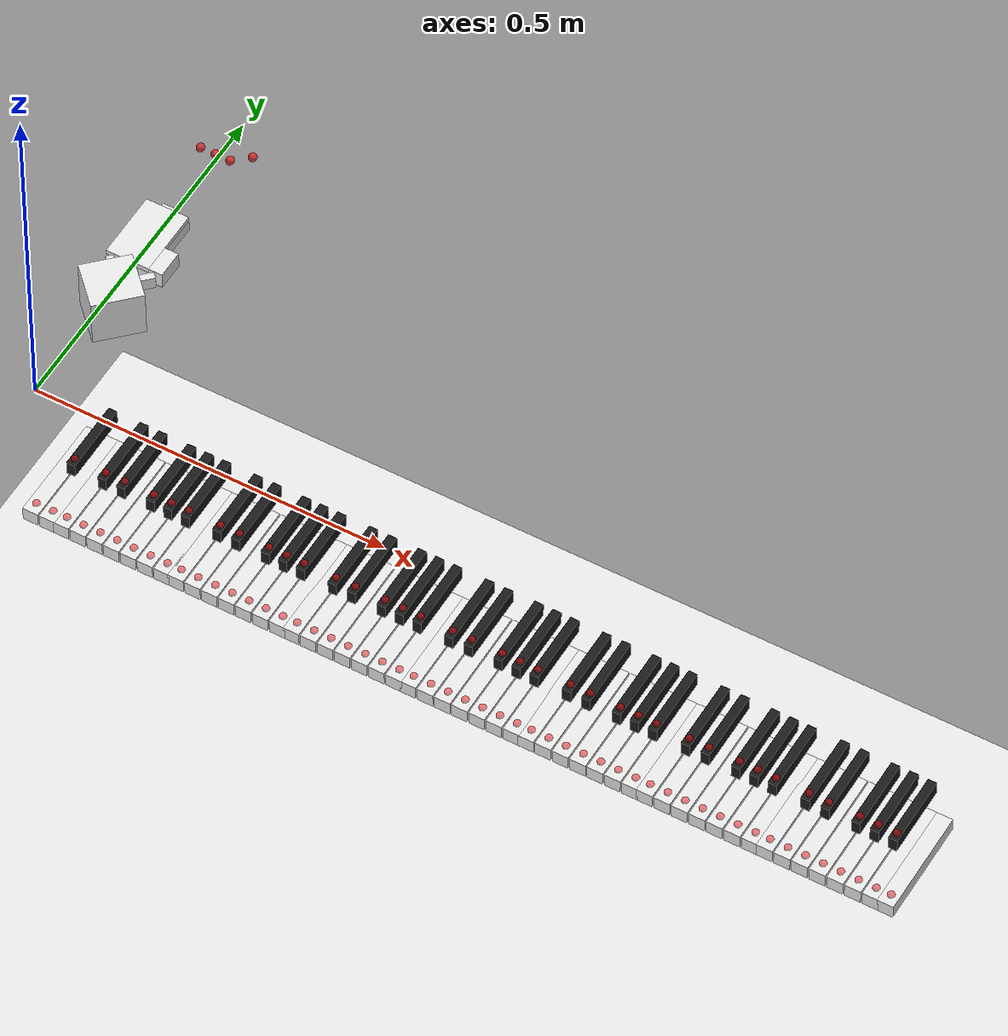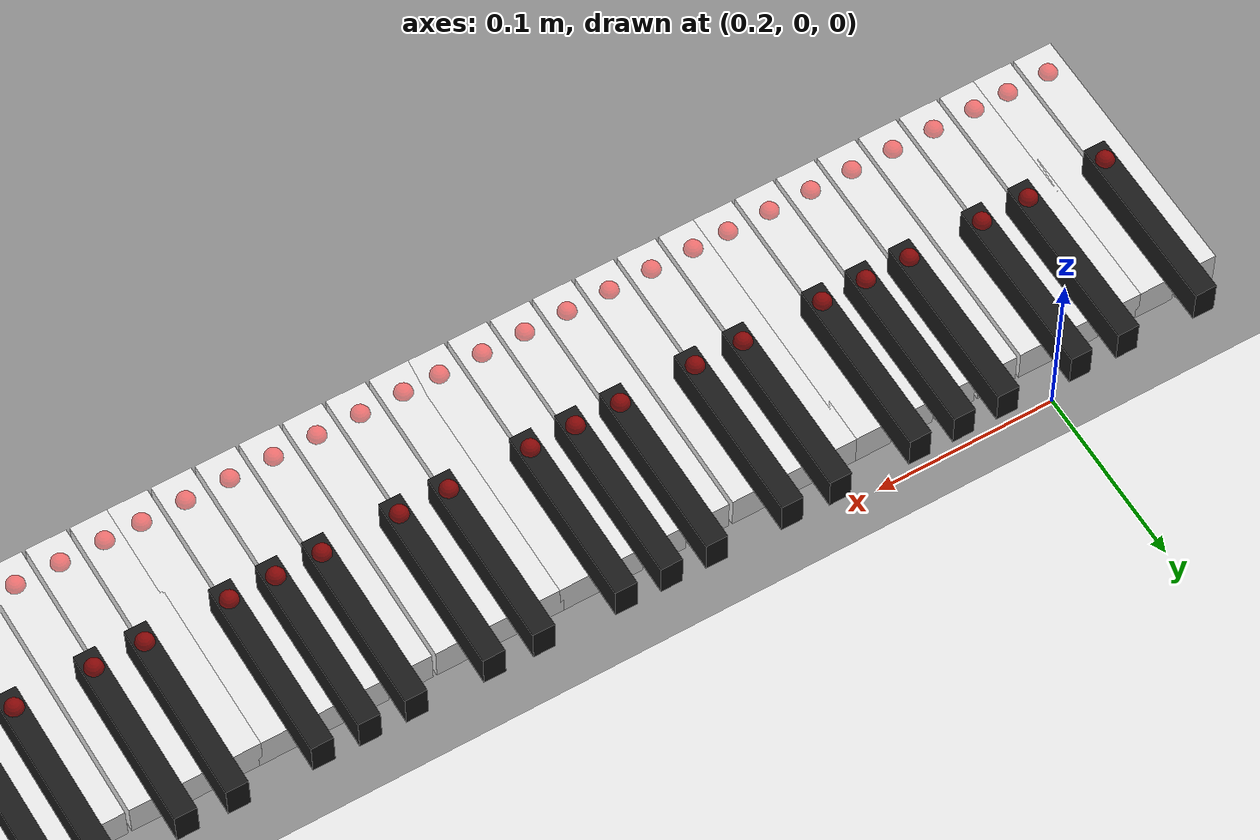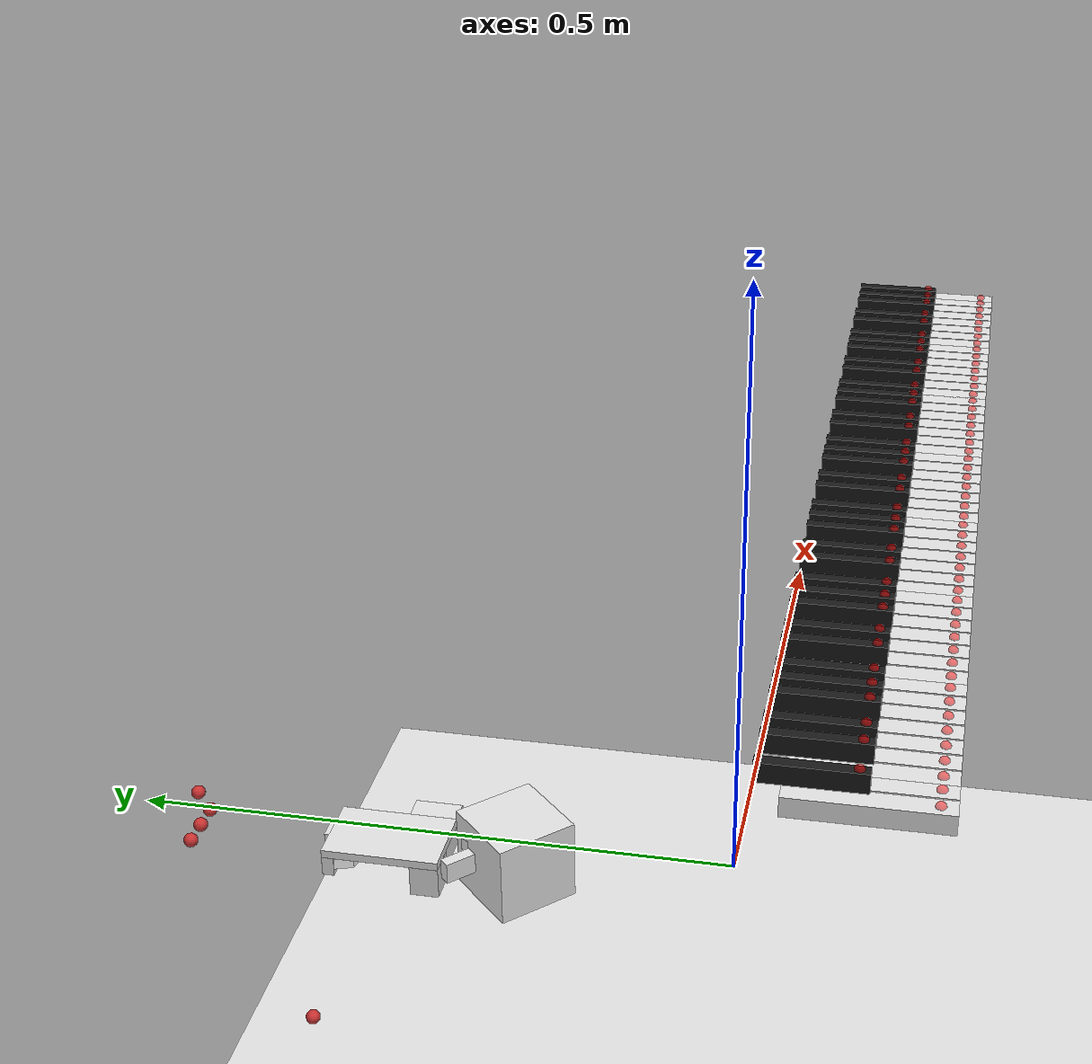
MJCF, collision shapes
<mujoco model="chord_shadow_hand">
  <compiler angle="radian" meshdir="../third_party/mujoco_menagerie/shadow_hand/assets" autolimits="true"/>
  <include file="piano.xml"/>

  <option timestep="0.001" integrator="implicitfast" iterations="50" gravity="0 0 -9.81" solver="Newton"/>

  <visual>
    <global offwidth="1920" offheight="1080"/>
    <headlight active="1" ambient="0.4 0.4 0.4" diffuse="0.5 0.5 0.5"/>
    <rgba haze="0.15 0.25 0.35 1"/>
    <quality shadowsize="4096"/>
  </visual>

  <default>
    <default class="gantry">
      <joint damping="100" armature="5.0" limited="true"/>
      <position kp="10000" forcerange="-10000 10000"/>
    </default>

    <default class="right_hand">
      <mesh scale="0.001 0.001 0.001"/>
      <joint axis="1 0 0" damping="0.05" armature="0.0002" frictionloss="0.01"/>
      <position forcerange="-5 5"/>

      <default class="wrist">
        <joint damping="0.5"/>
        <default class="wrist_y">
          <joint axis="0 1 0" range="-0.523599 0.174533"/>
          <position kp="10" ctrlrange="-0.523599 0.174533" forcerange="-20 20"/>
        </default>
        <default class="wrist_x">
          <joint range="-0.698132 0.488692"/>
          <position kp="8" ctrlrange="-0.698132 0.488692" forcerange="-20 20"/>
        </default>
      </default>

      <default class="thumb">
        <default class="thbase">
          <joint axis="0 0 -1" range="-1.0472 1.0472"/>
          <position kp="0.4" ctrlrange="-1.0472 1.0472" forcerange="-3 3"/>
        </default>
        <default class="thproximal">
          <joint range="0 1.22173"/>
          <position ctrlrange="0 1.22173" forcerange="-2 2"/>
        </default>
        <default class="thhub">
          <joint range="-0.20944 0.20944"/>
          <position kp="0.5" ctrlrange="-0.20944 0.20944"/>
        </default>
        <default class="thmiddle">
          <joint axis="0 -1 0" range="-0.698132 0.698132"/>
          <position kp="1.5" ctrlrange="-0.698132 0.698132"/>
        </default>
        <default class="thdistal">
          <joint range="-0.261799 1.5708"/>
          <position ctrlrange="-0.261799 1.5708"/>
        </default>
      </default>

      <default class="metacarpal">
        <joint axis="0.573576 0 0.819152" range="0 0.785398"/>
        <position ctrlrange="0 0.785398"/>
      </default>
      <default class="knuckle">
        <joint axis="0 -1 0" range="-0.349066 0.349066"/>
        <position ctrlrange="-0.349066 0.349066"/>
      </default>
      <default class="proximal">
        <joint range="-0.261799 1.5708"/>
        <position ctrlrange="-0.261799 1.5708"/>
      </default>
      <default class="middle_distal">
        <joint range="0 1.5708"/>
        <position kp="0.5" ctrlrange="0 3.1415"/>
      </default>

      <default class="plastic">
        <geom solimp="0.5 0.99 0.0001" solref="0.005 1"/>
        <default class="plastic_visual">
          <geom type="mesh" material="black" contype="0" conaffinity="0" group="2"/>
        </default>
        <default class="plastic_collision">
          <geom group="3" contype="0" conaffinity="0"/>
        </default>
      </default>
    </default>
  </default>

  <asset>
    <texture type="skybox" builtin="gradient" rgb1="0.1 0.15 0.2" rgb2="0 0 0" width="512" height="3072"/>
    <texture name="texplane" type="2d" builtin="checker" rgb1=".2 .3 .4" rgb2=".1 0.15 0.2" width="512" height="512" mark="cross" markrgb=".8 .8 .8"/>
    <material name="matplane" reflectance="0.3" texture="texplane" texrepeat="1 1" texuniform="true"/>

    <material name="black" specular="0.5" shininess="0.25" rgba="0.16355 0.16355 0.16355 1"/>
    <material name="gray" specular="0.0" shininess="0.25" rgba="0.80848 0.80848 0.80848 1"/>
    <material name="metallic" specular="0" shininess="0.25" rgba="0.9 0.9 0.9 1"/>

    <mesh class="right_hand" file="forearm_0.obj"/>
    <mesh class="right_hand" file="forearm_1.obj"/>
    <mesh class="right_hand" file="forearm_collision.obj"/>
    <mesh class="right_hand" file="wrist.obj"/>
    <mesh class="right_hand" file="palm.obj"/>
    <mesh class="right_hand" file="f_knuckle.obj"/>
    <mesh class="right_hand" file="f_proximal.obj"/>
    <mesh class="right_hand" file="f_middle.obj"/>
    <mesh class="right_hand" file="f_distal_pst.obj"/>
    <mesh class="right_hand" file="lf_metacarpal.obj"/>
    <mesh class="right_hand" file="th_proximal.obj"/>
    <mesh class="right_hand" file="th_middle.obj"/>
    <mesh class="right_hand" file="th_distal_pst.obj"/>
  </asset>

  <worldbody>
    <light pos="0.5 -0.5 2" dir="0 0 -1" castshadow="true" diffuse="0.8 0.8 0.8"/>
    <geom name="floor" pos="0 0 -1.0" size="2 2 0.1" type="plane" material="matplane"/>
    <body name="gantry_x" pos="0 0 0">
      <inertial pos="0 0 0" mass="20" diaginertia="1 1 1"/>
      <joint name="tx" type="slide" axis="1 0 0" class="gantry" range="-0.5 1.5"/>
      <body name="gantry_y" pos="0 0 0">
        <inertial pos="0 0 0" mass="15" diaginertia="1 1 1"/>
        <joint name="ty" type="slide" axis="0 1 0" class="gantry" range="-0.8 0.5"/>
        <body name="gantry_z" pos="0 0 0">
          <inertial pos="0 0 0" mass="10" diaginertia="1 1 1"/>
          <joint name="tz" type="slide" axis="0 0 1" class="gantry" range="0.0 0.6"/>
          <body name="wrist_roll" pos="0 0 0">
            <inertial pos="0 0 0" mass="2" diaginertia="0.1 0.1 0.1"/>
            <joint name="rx" type="hinge" axis="1 0 0" range="-0.5 0.5"/>
            <body name="wrist_pitch" pos="0 0 0">
              <inertial pos="0 0 0" mass="2" diaginertia="0.1 0.1 0.1"/>
              <joint name="ry" type="hinge" axis="0 1 0" range="-0.8 0.8"/>
              <body name="wrist_yaw" pos="0 0 0">
                <inertial pos="0 0 0" mass="2" diaginertia="0.1 0.1 0.1"/>
                <joint name="rz" type="hinge" axis="0 0 1" range="-0.8 0.8"/>

                <body name="rh_forearm" pos="0 0 0" childclass="right_hand" quat="0.5 -0.5 0.5 0.5">
                  <inertial mass="3" pos="0 0 0.09" diaginertia="0.0138 0.0138 0.00744"/>
                  <geom class="plastic_visual" mesh="forearm_0" material="gray"/>
                  <geom class="plastic_visual" mesh="forearm_1"/>
                  <geom class="plastic_collision" type="mesh" mesh="forearm_collision"/>
                  <geom class="plastic_collision" size="0.035 0.035 0.035" pos="0.01 0.0 0.181" quat="0.380188 0.924909 0 0" type="box"/>
                  <body name="rh_wrist" pos="0.01 0 0.21301" quat="1 0 0 1">
                    <inertial mass="0.1" pos="0 0 0.029" quat="0.5 0.5 0.5 0.5" diaginertia="6.4e-05 4.38e-05 3.5e-05"/>
                    <joint class="wrist_y" name="rh_WRJ2"/>
                    <geom class="plastic_visual" mesh="wrist" material="metallic"/>
                    <geom size="0.0135 0.015" quat="0.499998 0.5 0.5 -0.500002" type="cylinder" class="plastic_collision"/>
                    <geom size="0.011 0.005" pos="-0.026 0 0.034" quat="1 0 1 0" type="cylinder" class="plastic_collision"/>
                    <geom size="0.011 0.005" pos="0.031 0 0.034" quat="1 0 1 0" type="cylinder" class="plastic_collision"/>
                    <geom size="0.0135 0.009 0.005" pos="-0.021 0 0.011" quat="0.923879 0 0.382684 0" type="box" class="plastic_collision"/>
                    <geom size="0.0135 0.009 0.005" pos="0.026 0 0.01" quat="0.923879 0 -0.382684 0" type="box" class="plastic_collision"/>
                    <body name="rh_palm" pos="0 0 0.034">
                      <inertial mass="0.3" pos="0 0 0.035" quat="1 0 0 1" diaginertia="0.0005287 0.0003581 0.000191"/>
                      <joint class="wrist_x" name="rh_WRJ1"/>
                      <site name="grasp_site" pos="0 -.035 0.09" group="4"/>
                      <geom class="plastic_visual" mesh="palm"/>
                      <geom size="0.031 0.0035 0.049" pos="0.011 0.0085 0.038" type="box" class="plastic_collision"/>
                      <geom size="0.018 0.0085 0.049" pos="-0.002 -0.0035 0.038" type="box" class="plastic_collision"/>
                      <geom size="0.013 0.0085 0.005" pos="0.029 -0.0035 0.082" type="box" class="plastic_collision"/>
                      <geom size="0.013 0.007 0.009" pos="0.0265 -0.001 0.07" quat="0.987241 0.0990545 0.0124467 0.124052" type="box" class="plastic_collision"/>
                      <geom size="0.0105 0.0135 0.012" pos="0.0315 -0.0085 0.001" type="box" class="plastic_collision"/>
                      <geom size="0.011 0.0025 0.015" pos="0.0125 -0.015 0.004" quat="0.971338 0 0 -0.237703" type="box" class="plastic_collision"/>
                      <geom size="0.009 0.012 0.002" pos="0.011 0 0.089" type="box" class="plastic_collision"/>
                      <geom size="0.01 0.012 0.02" pos="-0.03 0 0.009" type="box" class="plastic_collision"/>
                      <body name="rh_ffknuckle" pos="0.033 0 0.095">
                        <inertial mass="0.008" pos="0 0 0.012" diaginertia="9.6e-07 8.9e-07 2e-07"/>
                        <joint name="rh_FFJ4" class="knuckle"/>
                        <geom class="plastic_visual" mesh="f_knuckle"/>
                        <geom class="plastic_collision" type="mesh" mesh="f_knuckle"/>
                        <body name="rh_ffproximal" pos="0 0 0.025">
                          <inertial mass="0.015" pos="0 0 0.017" diaginertia="2.5e-06 2.3e-06 6.3e-07"/>
                          <joint name="rh_FFJ3" class="proximal"/>
                          <geom class="plastic_visual" mesh="f_proximal"/>
                          <geom class="plastic_collision" type="mesh" mesh="f_proximal"/>
                          <body name="rh_ffmiddle" pos="0 0 0.028">
                            <inertial mass="0.006" pos="0 0 0.008" diaginertia="2.3e-07 2e-07 5e-08"/>
                            <geom class="plastic_visual" mesh="f_middle"/>
                            <geom class="plastic_collision" type="mesh" mesh="f_middle"/>
                            <joint name="rh_FFJ2" class="middle_distal"/>
                            <body name="rh_ffdistal" pos="0 0 0.025">
                              <inertial mass="0.004" pos="0 0 0.008" diaginertia="1.3e-07 1.2e-07 3e-08"/>
                              <joint name="rh_FFJ1" class="middle_distal"/>
                              <geom class="plastic_visual" mesh="f_distal_pst"/>
                              <geom class="plastic_collision" type="mesh" mesh="f_distal_pst"/>
                              <geom name="tip_geom_2" type="sphere" size="0.006" pos="0 0 0.03"
                                    rgba="0.8 0.2 0.2 1" contype="1" conaffinity="0"
                                    friction="1.5 0.01 0.001" solimp="0.95 0.99 0.001" solref="0.005 1"/>
                              <site name="tip_2" pos="0 0 0.03" size="0.004"/>
                            </body>
                          </body>
                        </body>
                      </body>
                      <body name="rh_mfknuckle" pos="0.011 0 0.095">
                        <inertial mass="0.008" pos="0 0 0.012" diaginertia="9.6e-07 8.9e-07 2e-07"/>
                        <joint name="rh_MFJ4" class="knuckle"/>
                        <geom class="plastic_visual" mesh="f_knuckle"/>
                        <geom class="plastic_collision" type="mesh" mesh="f_knuckle"/>
                        <body name="rh_mfproximal" pos="0 0 0.025">
                          <inertial mass="0.015" pos="0 0 0.017" diaginertia="2.5e-06 2.3e-06 6.3e-07"/>
                          <joint name="rh_MFJ3" class="proximal"/>
                          <geom class="plastic_visual" mesh="f_proximal"/>
                          <geom class="plastic_collision" type="mesh" mesh="f_proximal"/>
                          <body name="rh_mfmiddle" pos="0 0 0.028">
                            <inertial mass="0.006" pos="0 0 0.008" diaginertia="2.3e-07 2e-07 5e-08"/>
                            <geom class="plastic_visual" mesh="f_middle"/>
                            <geom class="plastic_collision" type="mesh" mesh="f_middle"/>
                            <joint name="rh_MFJ2" class="middle_distal"/>
                            <body name="rh_mfdistal" pos="0 0 0.025">
                              <inertial mass="0.004" pos="0 0 0.008" diaginertia="1.3e-07 1.2e-07 3e-08"/>
                              <joint name="rh_MFJ1" class="middle_distal"/>
                              <geom class="plastic_visual" mesh="f_distal_pst"/>
                              <geom class="plastic_collision" type="mesh" mesh="f_distal_pst"/>
                              <geom name="tip_geom_3" type="sphere" size="0.006" pos="0 0 0.03"
                                    rgba="0.8 0.2 0.2 1" contype="1" conaffinity="0"
                                    friction="1.5 0.01 0.001" solimp="0.95 0.99 0.001" solref="0.005 1"/>
                              <site name="tip_3" pos="0 0 0.03" size="0.004"/>
                            </body>
                          </body>
                        </body>
                      </body>
                      <body name="rh_rfknuckle" pos="-0.011 0 0.095">
                        <inertial mass="0.008" pos="0 0 0.012" diaginertia="9.6e-07 8.9e-07 2e-07"/>
                        <joint name="rh_RFJ4" class="knuckle"/>
                        <geom class="plastic_visual" mesh="f_knuckle"/>
                        <geom class="plastic_collision" type="mesh" mesh="f_knuckle"/>
                        <body name="rh_rfproximal" pos="0 0 0.025">
                          <inertial mass="0.015" pos="0 0 0.017" diaginertia="2.5e-06 2.3e-06 6.3e-07"/>
                          <joint name="rh_RFJ3" class="proximal"/>
                          <geom class="plastic_visual" mesh="f_proximal"/>
                          <geom class="plastic_collision" type="mesh" mesh="f_proximal"/>
                          <body name="rh_rfmiddle" pos="0 0 0.028">
                            <inertial mass="0.006" pos="0 0 0.008" diaginertia="2.3e-07 2e-07 5e-08"/>
                            <geom class="plastic_visual" mesh="f_middle"/>
                            <geom class="plastic_collision" type="mesh" mesh="f_middle"/>
                            <joint name="rh_RFJ2" class="middle_distal"/>
                            <body name="rh_rfdistal" pos="0 0 0.025">
                              <inertial mass="0.004" pos="0 0 0.008" diaginertia="1.3e-07 1.2e-07 3e-08"/>
                              <joint name="rh_RFJ1" class="middle_distal"/>
                              <geom class="plastic_visual" mesh="f_distal_pst"/>
                              <geom class="plastic_collision" type="mesh" mesh="f_distal_pst"/>
                              <geom name="tip_geom_4" type="sphere" size="0.006" pos="0 0 0.03"
                                    rgba="0.8 0.2 0.2 1" contype="1" conaffinity="0"
                                    friction="1.5 0.01 0.001" solimp="0.95 0.99 0.001" solref="0.005 1"/>
                              <site name="tip_4" pos="0 0 0.03" size="0.004"/>
                            </body>
                          </body>
                        </body>
                      </body>
                      <body name="rh_lfmetacarpal" pos="-0.033 0 0.089">
                        <inertial mass="0.010" pos="0 0 0.01" diaginertia="3.5e-06 3.4e-06 2.5e-06"/>
                        <joint name="rh_LFJ5" class="metacarpal"/>
                        <geom class="plastic_visual" mesh="lf_metacarpal"/>
                        <geom class="plastic_collision" type="mesh" mesh="lf_metacarpal"/>
                        <body name="rh_lfknuckle" pos="0 0 0.025">
                          <inertial mass="0.008" pos="0 0 0.012" diaginertia="9.6e-07 8.9e-07 2e-07"/>
                          <joint name="rh_LFJ4" class="knuckle"/>
                          <geom class="plastic_visual" mesh="f_knuckle"/>
                          <geom class="plastic_collision" type="mesh" mesh="f_knuckle"/>
                          <body name="rh_lfproximal" pos="0 0 0.025">
                            <inertial mass="0.015" pos="0 0 0.017" diaginertia="2.5e-06 2.3e-06 6.3e-07"/>
                            <joint name="rh_LFJ3" class="proximal"/>
                            <geom class="plastic_visual" mesh="f_proximal"/>
                            <geom class="plastic_collision" type="mesh" mesh="f_proximal"/>
                            <body name="rh_lfmiddle" pos="0 0 0.028">
                              <inertial mass="0.006" pos="0 0 0.008" diaginertia="2.3e-07 2e-07 5e-08"/>
                              <geom class="plastic_visual" mesh="f_middle"/>
                              <geom class="plastic_collision" type="mesh" mesh="f_middle"/>
                              <joint name="rh_LFJ2" class="middle_distal"/>
                              <body name="rh_lfdistal" pos="0 0 0.025">
                                <inertial mass="0.004" pos="0 0 0.008" diaginertia="1.3e-07 1.2e-07 3e-08"/>
                                <joint name="rh_LFJ1" class="middle_distal"/>
                                <geom class="plastic_visual" mesh="f_distal_pst"/>
                                <geom class="plastic_collision" type="mesh" mesh="f_distal_pst"/>
                                <geom name="tip_geom_5" type="sphere" size="0.006" pos="0 0 0.03"
                                      rgba="0.8 0.2 0.2 1" contype="1" conaffinity="0"
                                      friction="1.5 0.01 0.001" solimp="0.95 0.99 0.001" solref="0.005 1"/>
                                <site name="tip_5" pos="0 0 0.03" size="0.004"/>
                              </body>
                            </body>
                          </body>
                        </body>
                      </body>
                      <body name="rh_thbase" pos="0.034 -0.016 0.031" quat="0.978148 0 0 0.207912">
                        <inertial mass="0.012" pos="0 0 0.018" diaginertia="5.9e-06 5.5e-06 1.6e-06"/>
                        <joint name="rh_THJ5" class="thbase"/>
                        <geom class="plastic_visual" mesh="th_proximal" material="gray"/>
                        <geom class="plastic_collision" type="mesh" mesh="th_proximal"/>
                        <body name="rh_thproximal" pos="0 0 0.038" quat="0.758134 0.651006 0 0.0486882">
                          <inertial mass="0.010" pos="0 0 0.015" diaginertia="3.9e-06 3.6e-06 9e-07"/>
                          <joint name="rh_THJ4" class="thproximal"/>
                          <geom class="plastic_visual" mesh="th_proximal"/>
                          <geom class="plastic_collision" type="mesh" mesh="th_proximal"/>
                          <body name="rh_thhub" pos="0 0 0.032">
                            <inertial mass="0.008" pos="0 0 0.01" diaginertia="2.4e-06 2.1e-06 7e-07"/>
                            <joint name="rh_THJ3" class="thhub"/>
                            <geom class="plastic_visual" mesh="th_middle"/>
                            <geom class="plastic_collision" type="mesh" mesh="th_middle"/>
                            <body name="rh_thmiddle" pos="0 0 0.028">
                              <inertial mass="0.005" pos="0 0 0.01" diaginertia="1.2e-06 1.2e-06 3e-07"/>
                              <joint name="rh_THJ2" class="thmiddle"/>
                              <geom class="plastic_visual" mesh="th_middle"/>
                              <geom class="plastic_collision" type="mesh" mesh="th_middle"/>
                              <body name="rh_thdistal" pos="0 0 0.032" quat="1 0 0 -1">
                                <inertial mass="0.004" pos="0 0 0.012" diaginertia="7e-07 6e-07 2e-07"/>
                                <joint name="rh_THJ1" class="thdistal"/>
                                <geom class="plastic_visual" mesh="th_distal_pst"/>
                                <geom class="plastic_collision" type="mesh" mesh="th_distal_pst"/>
                                                              <geom name="tip_geom_1" type="sphere" size="0.006" pos="0 0 0.03"
                                                                    rgba="0.8 0.2 0.2 1" contype="1" conaffinity="0"
                                                                    friction="1.5 0.01 0.001" solimp="0.95 0.99 0.001" solref="0.005 1"/>                                <site name="tip_1" pos="0 0 0.03" size="0.004"/>
                              </body>
                            </body>
                          </body>
                        </body>
                      </body>
                    </body>
                  </body>
                </body>
              </body>
            </body>
          </body>
        </body>
      </body>
    </body>
  </worldbody>

  <tendon>
    <fixed name="rh_FFJ0">
      <joint joint="rh_FFJ2" coef="1"/>
      <joint joint="rh_FFJ1" coef="1"/>
    </fixed>
    <fixed name="rh_MFJ0">
      <joint joint="rh_MFJ2" coef="1"/>
      <joint joint="rh_MFJ1" coef="1"/>
    </fixed>
    <fixed name="rh_RFJ0">
      <joint joint="rh_RFJ2" coef="1"/>
      <joint joint="rh_RFJ1" coef="1"/>
    </fixed>
    <fixed name="rh_LFJ0">
      <joint joint="rh_LFJ2" coef="1"/>
      <joint joint="rh_LFJ1" coef="1"/>
    </fixed>
  </tendon>

  <actuator>
    <position name="a_tx" joint="tx" class="gantry"/>
    <position name="a_ty" joint="ty" class="gantry"/>
    <position name="a_tz" joint="tz" class="gantry"/>
    <position name="a_rx" joint="rx" class="gantry"/>
    <position name="a_ry" joint="ry" class="gantry"/>
    <position name="a_rz" joint="rz" class="gantry"/>

    <position name="rh_A_WRJ2" joint="rh_WRJ2" class="wrist_y"/>
    <position name="rh_A_WRJ1" joint="rh_WRJ1" class="wrist_x"/>
    <position name="rh_A_THJ5" joint="rh_THJ5" class="thbase"/>
    <position name="rh_A_THJ4" joint="rh_THJ4" class="thproximal"/>
    <position name="rh_A_THJ3" joint="rh_THJ3" class="thhub"/>
    <position name="rh_A_THJ2" joint="rh_THJ2" class="thmiddle"/>
    <position name="rh_A_THJ1" joint="rh_THJ1" class="thdistal"/>
    <position name="rh_A_FFJ4" joint="rh_FFJ4" class="knuckle"/>
    <position name="rh_A_FFJ3" joint="rh_FFJ3" class="proximal"/>
    <position name="rh_A_FFJ0" tendon="rh_FFJ0" class="middle_distal"/>
    <position name="rh_A_MFJ4" joint="rh_MFJ4" class="knuckle"/>
    <position name="rh_A_MFJ3" joint="rh_MFJ3" class="proximal"/>
    <position name="rh_A_MFJ0" tendon="rh_MFJ0" class="middle_distal"/>
    <position name="rh_A_RFJ4" joint="rh_RFJ4" class="knuckle"/>
    <position name="rh_A_RFJ3" joint="rh_RFJ3" class="proximal"/>
    <position name="rh_A_RFJ0" tendon="rh_RFJ0" class="middle_distal"/>
    <position name="rh_A_LFJ5" joint="rh_LFJ5" class="metacarpal"/>
    <position name="rh_A_LFJ4" joint="rh_LFJ4" class="knuckle"/>
    <position name="rh_A_LFJ3" joint="rh_LFJ3" class="proximal"/>
    <position name="rh_A_LFJ0" tendon="rh_LFJ0" class="middle_distal"/>
  </actuator>
</mujoco>

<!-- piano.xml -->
<mujoco model="piano_88">
  <default>
    <geom rgba="0.9 0.9 0.9 1" type="box"/>
    <!-- Keys are slide joints with spring return -->
    <joint type="slide" axis="0 0 -1" limited="true" range="0 0.012" damping="0.5" stiffness="1000" armature="0.001"/>
  </default>
  <worldbody>

            <body name="key_21" pos="0.09999999999999999 -0.1 0">
                <joint name="k21"/>
                <geom size="0.011 0.075 0.01" pos="0 0 0"/>
                <site name="s_21" pos="0 -0.06 0.01" size="0.005" rgba="1 0 0 0.5"/>
            </body>
            <body name="key_22" pos="0.113 -0.05 0.02">
                <joint name="k22"/>
                <geom size="0.006 0.05 0.01" rgba="0.1 0.1 0.1 1"/>
                <site name="s_22" pos="0 -0.04 0.01" size="0.005" rgba="1 0 0 0.5"/>
            </body>
            <body name="key_23" pos="0.12399999999999999 -0.1 0">
                <joint name="k23"/>
                <geom size="0.011 0.075 0.01" pos="0 0 0"/>
                <site name="s_23" pos="0 -0.06 0.01" size="0.005" rgba="1 0 0 0.5"/>
            </body>
            <body name="key_24" pos="0.14400000000000002 -0.1 0">
                <joint name="k24"/>
                <geom size="0.011 0.075 0.01" pos="0 0 0"/>
                <site name="s_24" pos="0 -0.06 0.01" size="0.005" rgba="1 0 0 0.5"/>
            </body>
            <body name="key_25" pos="0.15800000000000003 -0.05 0.02">
                <joint name="k25"/>
                <geom size="0.006 0.05 0.01" rgba="0.1 0.1 0.1 1"/>
                <site name="s_25" pos="0 -0.04 0.01" size="0.005" rgba="1 0 0 0.5"/>
            </body>
            <body name="key_26" pos="0.168 -0.1 0">
                <joint name="k26"/>
                <geom size="0.011 0.075 0.01" pos="0 0 0"/>
                <site name="s_26" pos="0 -0.06 0.01" size="0.005" rgba="1 0 0 0.5"/>
            </body>
            <body name="key_27" pos="0.18500000000000003 -0.05 0.02">
                <joint name="k27"/>
                <geom size="0.006 0.05 0.01" rgba="0.1 0.1 0.1 1"/>
                <site name="s_27" pos="0 -0.04 0.01" size="0.005" rgba="1 0 0 0.5"/>
            </body>
            <body name="key_28" pos="0.19200000000000003 -0.1 0">
                <joint name="k28"/>
                <geom size="0.011 0.075 0.01" pos="0 0 0"/>
                <site name="s_28" pos="0 -0.06 0.01" size="0.005" rgba="1 0 0 0.5"/>
            </body>
            <body name="key_29" pos="0.216 -0.1 0">
                <joint name="k29"/>
                <geom size="0.011 0.075 0.01" pos="0 0 0"/>
                <site name="s_29" pos="0 -0.06 0.01" size="0.005" rgba="1 0 0 0.5"/>
            </body>
            <body name="key_30" pos="0.227 -0.05 0.02">
                <joint name="k30"/>
                <geom size="0.006 0.05 0.01" rgba="0.1 0.1 0.1 1"/>
                <site name="s_30" pos="0 -0.04 0.01" size="0.005" rgba="1 0 0 0.5"/>
            </body>
            <body name="key_31" pos="0.24000000000000002 -0.1 0">
                <joint name="k31"/>
                <geom size="0.011 0.075 0.01" pos="0 0 0"/>
                <site name="s_31" pos="0 -0.06 0.01" size="0.005" rgba="1 0 0 0.5"/>
            </body>
            <body name="key_32" pos="0.252 -0.05 0.02">
                <joint name="k32"/>
                <geom size="0.006 0.05 0.01" rgba="0.1 0.1 0.1 1"/>
                <site name="s_32" pos="0 -0.04 0.01" size="0.005" rgba="1 0 0 0.5"/>
            </body>
            <body name="key_33" pos="0.264 -0.1 0">
                <joint name="k33"/>
                <geom size="0.011 0.075 0.01" pos="0 0 0"/>
                <site name="s_33" pos="0 -0.06 0.01" size="0.005" rgba="1 0 0 0.5"/>
            </body>
            <body name="key_34" pos="0.277 -0.05 0.02">
                <joint name="k34"/>
                <geom size="0.006 0.05 0.01" rgba="0.1 0.1 0.1 1"/>
                <site name="s_34" pos="0 -0.04 0.01" size="0.005" rgba="1 0 0 0.5"/>
            </body>
            <body name="key_35" pos="0.288 -0.1 0">
                <joint name="k35"/>
                <geom size="0.011 0.075 0.01" pos="0 0 0"/>
                <site name="s_35" pos="0 -0.06 0.01" size="0.005" rgba="1 0 0 0.5"/>
            </body>
            <body name="key_36" pos="0.308 -0.1 0">
                <joint name="k36"/>
                <geom size="0.011 0.075 0.01" pos="0 0 0"/>
                <site name="s_36" pos="0 -0.06 0.01" size="0.005" rgba="1 0 0 0.5"/>
            </body>
            <body name="key_37" pos="0.322 -0.05 0.02">
                <joint name="k37"/>
                <geom size="0.006 0.05 0.01" rgba="0.1 0.1 0.1 1"/>
                <site name="s_37" pos="0 -0.04 0.01" size="0.005" rgba="1 0 0 0.5"/>
            </body>
            <body name="key_38" pos="0.332 -0.1 0">
                <joint name="k38"/>
                <geom size="0.011 0.075 0.01" pos="0 0 0"/>
                <site name="s_38" pos="0 -0.06 0.01" size="0.005" rgba="1 0 0 0.5"/>
            </body>
            <body name="key_39" pos="0.349 -0.05 0.02">
                <joint name="k39"/>
                <geom size="0.006 0.05 0.01" rgba="0.1 0.1 0.1 1"/>
                <site name="s_39" pos="0 -0.04 0.01" size="0.005" rgba="1 0 0 0.5"/>
            </body>
            <body name="key_40" pos="0.356 -0.1 0">
                <joint name="k40"/>
                <geom size="0.011 0.075 0.01" pos="0 0 0"/>
                <site name="s_40" pos="0 -0.06 0.01" size="0.005" rgba="1 0 0 0.5"/>
            </body>
            <body name="key_41" pos="0.38 -0.1 0">
                <joint name="k41"/>
                <geom size="0.011 0.075 0.01" pos="0 0 0"/>
                <site name="s_41" pos="0 -0.06 0.01" size="0.005" rgba="1 0 0 0.5"/>
            </body>
            <body name="key_42" pos="0.391 -0.05 0.02">
                <joint name="k42"/>
                <geom size="0.006 0.05 0.01" rgba="0.1 0.1 0.1 1"/>
                <site name="s_42" pos="0 -0.04 0.01" size="0.005" rgba="1 0 0 0.5"/>
            </body>
            <body name="key_43" pos="0.404 -0.1 0">
                <joint name="k43"/>
                <geom size="0.011 0.075 0.01" pos="0 0 0"/>
                <site name="s_43" pos="0 -0.06 0.01" size="0.005" rgba="1 0 0 0.5"/>
            </body>
            <body name="key_44" pos="0.416 -0.05 0.02">
                <joint name="k44"/>
                <geom size="0.006 0.05 0.01" rgba="0.1 0.1 0.1 1"/>
                <site name="s_44" pos="0 -0.04 0.01" size="0.005" rgba="1 0 0 0.5"/>
            </body>
            <body name="key_45" pos="0.428 -0.1 0">
                <joint name="k45"/>
                <geom size="0.011 0.075 0.01" pos="0 0 0"/>
                <site name="s_45" pos="0 -0.06 0.01" size="0.005" rgba="1 0 0 0.5"/>
            </body>
            <body name="key_46" pos="0.441 -0.05 0.02">
                <joint name="k46"/>
                <geom size="0.006 0.05 0.01" rgba="0.1 0.1 0.1 1"/>
                <site name="s_46" pos="0 -0.04 0.01" size="0.005" rgba="1 0 0 0.5"/>
            </body>
            <body name="key_47" pos="0.45199999999999996 -0.1 0">
                <joint name="k47"/>
                <geom size="0.011 0.075 0.01" pos="0 0 0"/>
                <site name="s_47" pos="0 -0.06 0.01" size="0.005" rgba="1 0 0 0.5"/>
            </body>
            <body name="key_48" pos="0.472 -0.1 0">
                <joint name="k48"/>
                <geom size="0.011 0.075 0.01" pos="0 0 0"/>
                <site name="s_48" pos="0 -0.06 0.01" size="0.005" rgba="1 0 0 0.5"/>
            </body>
            <body name="key_49" pos="0.486 -0.05 0.02">
                <joint name="k49"/>
                <geom size="0.006 0.05 0.01" rgba="0.1 0.1 0.1 1"/>
                <site name="s_49" pos="0 -0.04 0.01" size="0.005" rgba="1 0 0 0.5"/>
            </body>
            <body name="key_50" pos="0.496 -0.1 0">
                <joint name="k50"/>
                <geom size="0.011 0.075 0.01" pos="0 0 0"/>
                <site name="s_50" pos="0 -0.06 0.01" size="0.005" rgba="1 0 0 0.5"/>
            </body>
            <body name="key_51" pos="0.513 -0.05 0.02">
                <joint name="k51"/>
                <geom size="0.006 0.05 0.01" rgba="0.1 0.1 0.1 1"/>
                <site name="s_51" pos="0 -0.04 0.01" size="0.005" rgba="1 0 0 0.5"/>
            </body>
            <body name="key_52" pos="0.52 -0.1 0">
                <joint name="k52"/>
                <geom size="0.011 0.075 0.01" pos="0 0 0"/>
                <site name="s_52" pos="0 -0.06 0.01" size="0.005" rgba="1 0 0 0.5"/>
            </body>
            <body name="key_53" pos="0.5439999999999999 -0.1 0">
                <joint name="k53"/>
                <geom size="0.011 0.075 0.01" pos="0 0 0"/>
                <site name="s_53" pos="0 -0.06 0.01" size="0.005" rgba="1 0 0 0.5"/>
            </body>
            <body name="key_54" pos="0.5549999999999999 -0.05 0.02">
                <joint name="k54"/>
                <geom size="0.006 0.05 0.01" rgba="0.1 0.1 0.1 1"/>
                <site name="s_54" pos="0 -0.04 0.01" size="0.005" rgba="1 0 0 0.5"/>
            </body>
            <body name="key_55" pos="0.568 -0.1 0">
                <joint name="k55"/>
                <geom size="0.011 0.075 0.01" pos="0 0 0"/>
                <site name="s_55" pos="0 -0.06 0.01" size="0.005" rgba="1 0 0 0.5"/>
            </body>
            <body name="key_56" pos="0.58 -0.05 0.02">
                <joint name="k56"/>
                <geom size="0.006 0.05 0.01" rgba="0.1 0.1 0.1 1"/>
                <site name="s_56" pos="0 -0.04 0.01" size="0.005" rgba="1 0 0 0.5"/>
            </body>
            <body name="key_57" pos="0.592 -0.1 0">
                <joint name="k57"/>
                <geom size="0.011 0.075 0.01" pos="0 0 0"/>
                <site name="s_57" pos="0 -0.06 0.01" size="0.005" rgba="1 0 0 0.5"/>
            </body>
            <body name="key_58" pos="0.605 -0.05 0.02">
                <joint name="k58"/>
                <geom size="0.006 0.05 0.01" rgba="0.1 0.1 0.1 1"/>
                <site name="s_58" pos="0 -0.04 0.01" size="0.005" rgba="1 0 0 0.5"/>
            </body>
            <body name="key_59" pos="0.616 -0.1 0">
                <joint name="k59"/>
                <geom size="0.011 0.075 0.01" pos="0 0 0"/>
                <site name="s_59" pos="0 -0.06 0.01" size="0.005" rgba="1 0 0 0.5"/>
            </body>
            <body name="key_60" pos="0.636 -0.1 0">
                <joint name="k60"/>
                <geom size="0.011 0.075 0.01" pos="0 0 0"/>
                <site name="s_60" pos="0 -0.06 0.01" size="0.005" rgba="1 0 0 0.5"/>
            </body>
            <body name="key_61" pos="0.65 -0.05 0.02">
                <joint name="k61"/>
                <geom size="0.006 0.05 0.01" rgba="0.1 0.1 0.1 1"/>
                <site name="s_61" pos="0 -0.04 0.01" size="0.005" rgba="1 0 0 0.5"/>
            </body>
            <body name="key_62" pos="0.66 -0.1 0">
                <joint name="k62"/>
                <geom size="0.011 0.075 0.01" pos="0 0 0"/>
                <site name="s_62" pos="0 -0.06 0.01" size="0.005" rgba="1 0 0 0.5"/>
            </body>
            <body name="key_63" pos="0.677 -0.05 0.02">
                <joint name="k63"/>
                <geom size="0.006 0.05 0.01" rgba="0.1 0.1 0.1 1"/>
                <site name="s_63" pos="0 -0.04 0.01" size="0.005" rgba="1 0 0 0.5"/>
            </body>
            <body name="key_64" pos="0.684 -0.1 0">
                <joint name="k64"/>
                <geom size="0.011 0.075 0.01" pos="0 0 0"/>
                <site name="s_64" pos="0 -0.06 0.01" size="0.005" rgba="1 0 0 0.5"/>
            </body>
            <body name="key_65" pos="0.708 -0.1 0">
                <joint name="k65"/>
                <geom size="0.011 0.075 0.01" pos="0 0 0"/>
                <site name="s_65" pos="0 -0.06 0.01" size="0.005" rgba="1 0 0 0.5"/>
            </body>
            <body name="key_66" pos="0.719 -0.05 0.02">
                <joint name="k66"/>
                <geom size="0.006 0.05 0.01" rgba="0.1 0.1 0.1 1"/>
                <site name="s_66" pos="0 -0.04 0.01" size="0.005" rgba="1 0 0 0.5"/>
            </body>
            <body name="key_67" pos="0.732 -0.1 0">
                <joint name="k67"/>
                <geom size="0.011 0.075 0.01" pos="0 0 0"/>
                <site name="s_67" pos="0 -0.06 0.01" size="0.005" rgba="1 0 0 0.5"/>
            </body>
            <body name="key_68" pos="0.744 -0.05 0.02">
                <joint name="k68"/>
                <geom size="0.006 0.05 0.01" rgba="0.1 0.1 0.1 1"/>
                <site name="s_68" pos="0 -0.04 0.01" size="0.005" rgba="1 0 0 0.5"/>
            </body>
            <body name="key_69" pos="0.756 -0.1 0">
                <joint name="k69"/>
                <geom size="0.011 0.075 0.01" pos="0 0 0"/>
                <site name="s_69" pos="0 -0.06 0.01" size="0.005" rgba="1 0 0 0.5"/>
            </body>
            <body name="key_70" pos="0.769 -0.05 0.02">
                <joint name="k70"/>
                <geom size="0.006 0.05 0.01" rgba="0.1 0.1 0.1 1"/>
                <site name="s_70" pos="0 -0.04 0.01" size="0.005" rgba="1 0 0 0.5"/>
            </body>
            <body name="key_71" pos="0.78 -0.1 0">
                <joint name="k71"/>
                <geom size="0.011 0.075 0.01" pos="0 0 0"/>
                <site name="s_71" pos="0 -0.06 0.01" size="0.005" rgba="1 0 0 0.5"/>
            </body>
            <body name="key_72" pos="0.8 -0.1 0">
                <joint name="k72"/>
                <geom size="0.011 0.075 0.01" pos="0 0 0"/>
                <site name="s_72" pos="0 -0.06 0.01" size="0.005" rgba="1 0 0 0.5"/>
            </body>
            <body name="key_73" pos="0.8140000000000001 -0.05 0.02">
                <joint name="k73"/>
                <geom size="0.006 0.05 0.01" rgba="0.1 0.1 0.1 1"/>
                <site name="s_73" pos="0 -0.04 0.01" size="0.005" rgba="1 0 0 0.5"/>
            </body>
            <body name="key_74" pos="0.8240000000000001 -0.1 0">
                <joint name="k74"/>
                <geom size="0.011 0.075 0.01" pos="0 0 0"/>
                <site name="s_74" pos="0 -0.06 0.01" size="0.005" rgba="1 0 0 0.5"/>
            </body>
            <body name="key_75" pos="0.8410000000000001 -0.05 0.02">
                <joint name="k75"/>
                <geom size="0.006 0.05 0.01" rgba="0.1 0.1 0.1 1"/>
                <site name="s_75" pos="0 -0.04 0.01" size="0.005" rgba="1 0 0 0.5"/>
            </body>
            <body name="key_76" pos="0.8480000000000001 -0.1 0">
                <joint name="k76"/>
                <geom size="0.011 0.075 0.01" pos="0 0 0"/>
                <site name="s_76" pos="0 -0.06 0.01" size="0.005" rgba="1 0 0 0.5"/>
            </body>
            <body name="key_77" pos="0.872 -0.1 0">
                <joint name="k77"/>
                <geom size="0.011 0.075 0.01" pos="0 0 0"/>
                <site name="s_77" pos="0 -0.06 0.01" size="0.005" rgba="1 0 0 0.5"/>
            </body>
            <body name="key_78" pos="0.883 -0.05 0.02">
                <joint name="k78"/>
                <geom size="0.006 0.05 0.01" rgba="0.1 0.1 0.1 1"/>
                <site name="s_78" pos="0 -0.04 0.01" size="0.005" rgba="1 0 0 0.5"/>
            </body>
            <body name="key_79" pos="0.896 -0.1 0">
                <joint name="k79"/>
                <geom size="0.011 0.075 0.01" pos="0 0 0"/>
                <site name="s_79" pos="0 -0.06 0.01" size="0.005" rgba="1 0 0 0.5"/>
            </body>
            <body name="key_80" pos="0.908 -0.05 0.02">
                <joint name="k80"/>
                <geom size="0.006 0.05 0.01" rgba="0.1 0.1 0.1 1"/>
                <site name="s_80" pos="0 -0.04 0.01" size="0.005" rgba="1 0 0 0.5"/>
            </body>
            <body name="key_81" pos="0.92 -0.1 0">
                <joint name="k81"/>
                <geom size="0.011 0.075 0.01" pos="0 0 0"/>
                <site name="s_81" pos="0 -0.06 0.01" size="0.005" rgba="1 0 0 0.5"/>
            </body>
            <body name="key_82" pos="0.933 -0.05 0.02">
                <joint name="k82"/>
                <geom size="0.006 0.05 0.01" rgba="0.1 0.1 0.1 1"/>
                <site name="s_82" pos="0 -0.04 0.01" size="0.005" rgba="1 0 0 0.5"/>
            </body>
            <body name="key_83" pos="0.9440000000000001 -0.1 0">
                <joint name="k83"/>
                <geom size="0.011 0.075 0.01" pos="0 0 0"/>
                <site name="s_83" pos="0 -0.06 0.01" size="0.005" rgba="1 0 0 0.5"/>
            </body>
            <body name="key_84" pos="0.964 -0.1 0">
                <joint name="k84"/>
                <geom size="0.011 0.075 0.01" pos="0 0 0"/>
                <site name="s_84" pos="0 -0.06 0.01" size="0.005" rgba="1 0 0 0.5"/>
            </body>
            <body name="key_85" pos="0.978 -0.05 0.02">
                <joint name="k85"/>
                <geom size="0.006 0.05 0.01" rgba="0.1 0.1 0.1 1"/>
                <site name="s_85" pos="0 -0.04 0.01" size="0.005" rgba="1 0 0 0.5"/>
            </body>
            <body name="key_86" pos="0.988 -0.1 0">
                <joint name="k86"/>
                <geom size="0.011 0.075 0.01" pos="0 0 0"/>
                <site name="s_86" pos="0 -0.06 0.01" size="0.005" rgba="1 0 0 0.5"/>
            </body>
            <body name="key_87" pos="1.005 -0.05 0.02">
                <joint name="k87"/>
                <geom size="0.006 0.05 0.01" rgba="0.1 0.1 0.1 1"/>
                <site name="s_87" pos="0 -0.04 0.01" size="0.005" rgba="1 0 0 0.5"/>
            </body>
            <body name="key_88" pos="1.012 -0.1 0">
                <joint name="k88"/>
                <geom size="0.011 0.075 0.01" pos="0 0 0"/>
                <site name="s_88" pos="0 -0.06 0.01" size="0.005" rgba="1 0 0 0.5"/>
            </body>
            <body name="key_89" pos="1.036 -0.1 0">
                <joint name="k89"/>
                <geom size="0.011 0.075 0.01" pos="0 0 0"/>
                <site name="s_89" pos="0 -0.06 0.01" size="0.005" rgba="1 0 0 0.5"/>
            </body>
            <body name="key_90" pos="1.047 -0.05 0.02">
                <joint name="k90"/>
                <geom size="0.006 0.05 0.01" rgba="0.1 0.1 0.1 1"/>
                <site name="s_90" pos="0 -0.04 0.01" size="0.005" rgba="1 0 0 0.5"/>
            </body>
            <body name="key_91" pos="1.06 -0.1 0">
                <joint name="k91"/>
                <geom size="0.011 0.075 0.01" pos="0 0 0"/>
                <site name="s_91" pos="0 -0.06 0.01" size="0.005" rgba="1 0 0 0.5"/>
            </body>
            <body name="key_92" pos="1.072 -0.05 0.02">
                <joint name="k92"/>
                <geom size="0.006 0.05 0.01" rgba="0.1 0.1 0.1 1"/>
                <site name="s_92" pos="0 -0.04 0.01" size="0.005" rgba="1 0 0 0.5"/>
            </body>
            <body name="key_93" pos="1.084 -0.1 0">
                <joint name="k93"/>
                <geom size="0.011 0.075 0.01" pos="0 0 0"/>
                <site name="s_93" pos="0 -0.06 0.01" size="0.005" rgba="1 0 0 0.5"/>
            </body>
            <body name="key_94" pos="1.097 -0.05 0.02">
                <joint name="k94"/>
                <geom size="0.006 0.05 0.01" rgba="0.1 0.1 0.1 1"/>
                <site name="s_94" pos="0 -0.04 0.01" size="0.005" rgba="1 0 0 0.5"/>
            </body>
            <body name="key_95" pos="1.1079999999999999 -0.1 0">
                <joint name="k95"/>
                <geom size="0.011 0.075 0.01" pos="0 0 0"/>
                <site name="s_95" pos="0 -0.06 0.01" size="0.005" rgba="1 0 0 0.5"/>
            </body>
            <body name="key_96" pos="1.1280000000000001 -0.1 0">
                <joint name="k96"/>
                <geom size="0.011 0.075 0.01" pos="0 0 0"/>
                <site name="s_96" pos="0 -0.06 0.01" size="0.005" rgba="1 0 0 0.5"/>
            </body>
            <body name="key_97" pos="1.1420000000000001 -0.05 0.02">
                <joint name="k97"/>
                <geom size="0.006 0.05 0.01" rgba="0.1 0.1 0.1 1"/>
                <site name="s_97" pos="0 -0.04 0.01" size="0.005" rgba="1 0 0 0.5"/>
            </body>
            <body name="key_98" pos="1.1520000000000001 -0.1 0">
                <joint name="k98"/>
                <geom size="0.011 0.075 0.01" pos="0 0 0"/>
                <site name="s_98" pos="0 -0.06 0.01" size="0.005" rgba="1 0 0 0.5"/>
            </body>
            <body name="key_99" pos="1.169 -0.05 0.02">
                <joint name="k99"/>
                <geom size="0.006 0.05 0.01" rgba="0.1 0.1 0.1 1"/>
                <site name="s_99" pos="0 -0.04 0.01" size="0.005" rgba="1 0 0 0.5"/>
            </body>
            <body name="key_100" pos="1.1760000000000002 -0.1 0">
                <joint name="k100"/>
                <geom size="0.011 0.075 0.01" pos="0 0 0"/>
                <site name="s_100" pos="0 -0.06 0.01" size="0.005" rgba="1 0 0 0.5"/>
            </body>
            <body name="key_101" pos="1.2000000000000002 -0.1 0">
                <joint name="k101"/>
                <geom size="0.011 0.075 0.01" pos="0 0 0"/>
                <site name="s_101" pos="0 -0.06 0.01" size="0.005" rgba="1 0 0 0.5"/>
            </body>
            <body name="key_102" pos="1.211 -0.05 0.02">
                <joint name="k102"/>
                <geom size="0.006 0.05 0.01" rgba="0.1 0.1 0.1 1"/>
                <site name="s_102" pos="0 -0.04 0.01" size="0.005" rgba="1 0 0 0.5"/>
            </body>
            <body name="key_103" pos="1.2240000000000002 -0.1 0">
                <joint name="k103"/>
                <geom size="0.011 0.075 0.01" pos="0 0 0"/>
                <site name="s_103" pos="0 -0.06 0.01" size="0.005" rgba="1 0 0 0.5"/>
            </body>
            <body name="key_104" pos="1.2360000000000002 -0.05 0.02">
                <joint name="k104"/>
                <geom size="0.006 0.05 0.01" rgba="0.1 0.1 0.1 1"/>
                <site name="s_104" pos="0 -0.04 0.01" size="0.005" rgba="1 0 0 0.5"/>
            </body>
            <body name="key_105" pos="1.2480000000000002 -0.1 0">
                <joint name="k105"/>
                <geom size="0.011 0.075 0.01" pos="0 0 0"/>
                <site name="s_105" pos="0 -0.06 0.01" size="0.005" rgba="1 0 0 0.5"/>
            </body>
            <body name="key_106" pos="1.2610000000000001 -0.05 0.02">
                <joint name="k106"/>
                <geom size="0.006 0.05 0.01" rgba="0.1 0.1 0.1 1"/>
                <site name="s_106" pos="0 -0.04 0.01" size="0.005" rgba="1 0 0 0.5"/>
            </body>
            <body name="key_107" pos="1.272 -0.1 0">
                <joint name="k107"/>
                <geom size="0.011 0.075 0.01" pos="0 0 0"/>
                <site name="s_107" pos="0 -0.06 0.01" size="0.005" rgba="1 0 0 0.5"/>
            </body>
            <body name="key_108" pos="1.292 -0.1 0">
                <joint name="k108"/>
                <geom size="0.011 0.075 0.01" pos="0 0 0"/>
                <site name="s_108" pos="0 -0.06 0.01" size="0.005" rgba="1 0 0 0.5"/>
            </body>
  </worldbody>
</mujoco>
